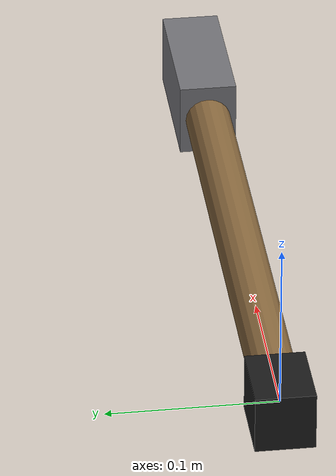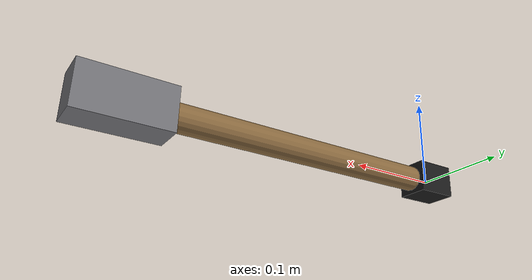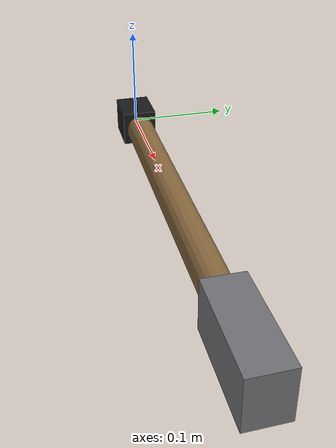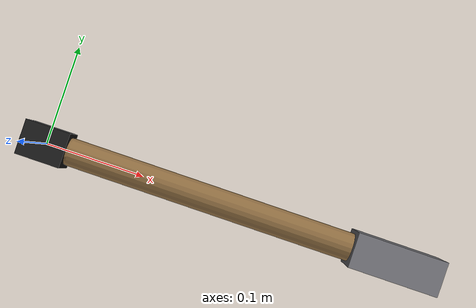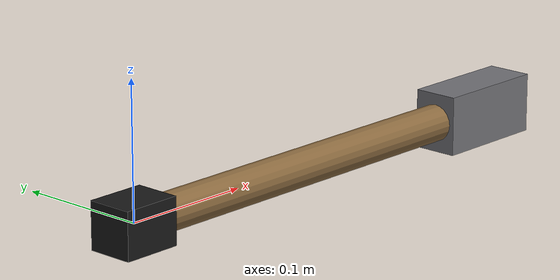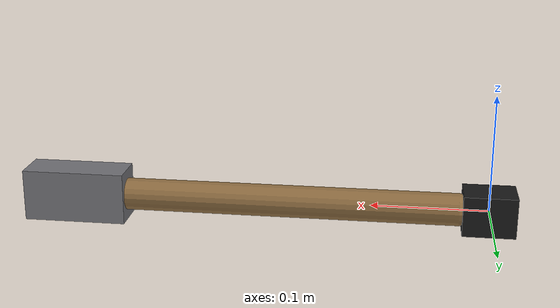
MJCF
<mujoco model="g1_hammer_attachment_primitives">
  <!-- Primitive-only placeholder for the hand-replacing hammer adapter.
       Attach downstream of the wrist yaw link; keep the forearm and wrist module. -->
  <asset>
    <material name="hammer_adapter_dark" rgba="0.10 0.10 0.10 1" />
    <material name="hammer_handle" rgba="0.55 0.42 0.25 1" />
    <material name="hammer_head" rgba="0.45 0.45 0.47 1" />
  </asset>
  <worldbody>
    <body name="hammer_adapter_reference" pos="0 0 0">
      <geom name="adapter_box" type="box" size="0.0225 0.0175 0.0175" material="hammer_adapter_dark" mass="0.15" />
      <geom name="handle_capsule" type="capsule" fromto="0.025 0 0 0.345 0 0" size="0.014" material="hammer_handle" mass="0.20" />
      <geom name="head_box" type="box" pos="0.36 0 0" size="0.045 0.0175 0.0225" material="hammer_head" mass="0.85" />
      <site name="hammer_com_estimate" pos="0.18 0 0" size="0.01" rgba="1 0 0 1" />
    </body>
  </worldbody>
</mujoco>
